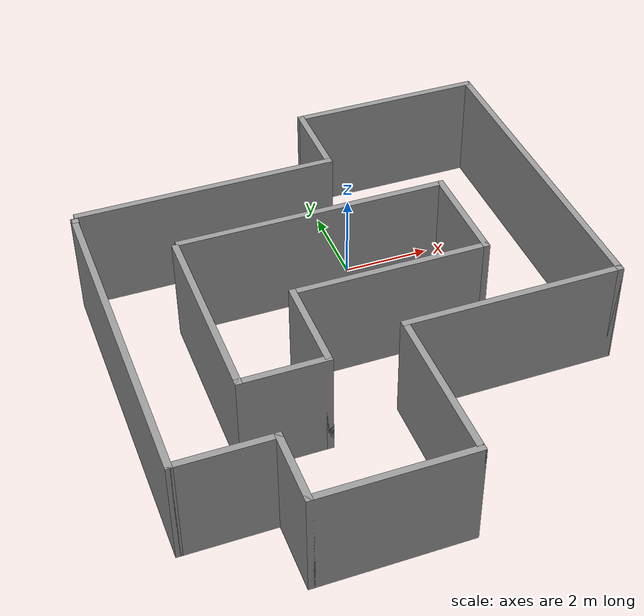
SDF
<?xml version='1.0'?>
<sdf version='1.6'>
  <model name='circleZ'>
    <pose frame=''>-0.878504 -2.71987 0 0 -0 0</pose>
    <link name='Wall_0'>
      <collision name='Wall_0_Collision'>
        <geometry>
          <box>
            <size>7.75 0.15 2.5</size>
          </box>
        </geometry>
        <pose frame=''>0 0 1.25 0 -0 0</pose>
      </collision>
      <visual name='Wall_0_Visual'>
        <pose frame=''>0 0 1.25 0 -0 0</pose>
        <geometry>
          <box>
            <size>7.75 0.15 2.5</size>
          </box>
        </geometry>
        <material>
          <script>
            <uri>file://media/materials/scripts/gazebo.material</uri>
            <name>Gazebo/Grey</name>
          </script>
          <ambient>1 1 1 1</ambient>
        </material>
      </visual>
      <pose frame=''>-5.15 -0.2 0 0 0 -1.5708</pose>
    </link>
    <link name='Wall_11'>
      <collision name='Wall_11_Collision'>
        <geometry>
          <box>
            <size>0.15 0.15 2.5</size>
          </box>
        </geometry>
        <pose frame=''>0 0 1.25 0 -0 0</pose>
      </collision>
      <visual name='Wall_11_Visual'>
        <pose frame=''>0 0 1.25 0 -0 0</pose>
        <geometry>
          <box>
            <size>0.15 0.15 2.5</size>
          </box>
        </geometry>
        <material>
          <script>
            <uri>file://media/materials/scripts/gazebo.material</uri>
            <name>Gazebo/Grey</name>
          </script>
          <ambient>1 1 1 1</ambient>
        </material>
      </visual>
      <pose frame=''>-5.13091 3.58818 0 0 -0 0</pose>
    </link>
    <link name='Wall_13'>
      <collision name='Wall_13_Collision'>
        <geometry>
          <box>
            <size>0.15 0.15 2.5</size>
          </box>
        </geometry>
        <pose frame=''>0 0 1.25 0 -0 0</pose>
      </collision>
      <visual name='Wall_13_Visual'>
        <pose frame=''>0 0 1.25 0 -0 0</pose>
        <geometry>
          <box>
            <size>0.15 0.15 2.5</size>
          </box>
        </geometry>
        <material>
          <script>
            <uri>file://media/materials/scripts/gazebo.material</uri>
            <name>Gazebo/Grey</name>
          </script>
          <ambient>1 1 1 1</ambient>
        </material>
      </visual>
      <pose frame=''>-5.13091 3.58818 0 0 -0 0</pose>
    </link>
    <link name='Wall_15'>
      <collision name='Wall_15_Collision'>
        <geometry>
          <box>
            <size>4.5 0.15 2.5</size>
          </box>
        </geometry>
        <pose frame=''>0 0 1.25 0 -0 0</pose>
      </collision>
      <visual name='Wall_15_Visual'>
        <pose frame=''>0 0 1.25 0 -0 0</pose>
        <geometry>
          <box>
            <size>4.5 0.15 2.5</size>
          </box>
        </geometry>
        <material>
          <script>
            <uri>file://media/materials/scripts/gazebo.material</uri>
            <name>Gazebo/Grey</name>
          </script>
          <ambient>1 1 1 1</ambient>
        </material>
      </visual>
      <pose frame=''>-3.33266 -0.231847 0 0 0 -1.5708</pose>
    </link>
    <link name='Wall_16'>
      <collision name='Wall_16_Collision'>
        <geometry>
          <box>
            <size>2 0.15 2.5</size>
          </box>
        </geometry>
        <pose frame=''>0 0 1.25 0 -0 0</pose>
      </collision>
      <visual name='Wall_16_Visual'>
        <pose frame=''>0 0 1.25 0 -0 0</pose>
        <geometry>
          <box>
            <size>2 0.15 2.5</size>
          </box>
        </geometry>
        <material>
          <script>
            <uri>file://media/materials/scripts/gazebo.material</uri>
            <name>Gazebo/Grey</name>
          </script>
          <ambient>1 1 1 1</ambient>
        </material>
      </visual>
      <pose frame=''>-2.40766 -2.40685 0 0 -0 0</pose>
    </link>
    <link name='Wall_18'>
      <collision name='Wall_18_Collision'>
        <geometry>
          <box>
            <size>2.25 0.15 2.5</size>
          </box>
        </geometry>
        <pose frame=''>0 0 1.25 0 -0 0</pose>
      </collision>
      <visual name='Wall_18_Visual'>
        <pose frame=''>0 0 1.25 0 -0 0</pose>
        <geometry>
          <box>
            <size>2.25 0.15 2.5</size>
          </box>
        </geometry>
        <material>
          <script>
            <uri>file://media/materials/scripts/gazebo.material</uri>
            <name>Gazebo/Grey</name>
          </script>
          <ambient>1 1 1 1</ambient>
        </material>
      </visual>
      <pose frame=''>-1.48266 -1.35685 0 0 -0 1.5708</pose>
    </link>
    <link name='Wall_19'>
      <collision name='Wall_19_Collision'>
        <geometry>
          <box>
            <size>4.5 0.15 2.5</size>
          </box>
        </geometry>
        <pose frame=''>0 0 1.25 0 -0 0</pose>
      </collision>
      <visual name='Wall_19_Visual'>
        <pose frame=''>0 0 1.25 0 -0 0</pose>
        <geometry>
          <box>
            <size>4.5 0.15 2.5</size>
          </box>
        </geometry>
        <material>
          <script>
            <uri>file://media/materials/scripts/gazebo.material</uri>
            <name>Gazebo/Grey</name>
          </script>
          <ambient>1 1 1 1</ambient>
        </material>
      </visual>
      <pose frame=''>0.692343 -0.306846 0 0 -0 0</pose>
    </link>
    <link name='Wall_2'>
      <collision name='Wall_2_Collision'>
        <geometry>
          <box>
            <size>2.25 0.15 2.5</size>
          </box>
        </geometry>
        <pose frame=''>0 0 1.25 0 -0 0</pose>
      </collision>
      <visual name='Wall_2_Visual'>
        <pose frame=''>0 0 1.25 0 -0 0</pose>
        <geometry>
          <box>
            <size>2.25 0.15 2.5</size>
          </box>
        </geometry>
        <material>
          <script>
            <uri>file://media/materials/scripts/gazebo.material</uri>
            <name>Gazebo/Grey</name>
          </script>
          <ambient>1 1 1 1</ambient>
        </material>
      </visual>
      <pose frame=''>-4.1 -4 0 0 -0 0</pose>
    </link>
    <link name='Wall_20'>
      <collision name='Wall_20_Collision'>
        <geometry>
          <box>
            <size>2.5 0.15 2.5</size>
          </box>
        </geometry>
        <pose frame=''>0 0 1.25 0 -0 0</pose>
      </collision>
      <visual name='Wall_20_Visual'>
        <pose frame=''>0 0 1.25 0 -0 0</pose>
        <geometry>
          <box>
            <size>2.5 0.15 2.5</size>
          </box>
        </geometry>
        <material>
          <script>
            <uri>file://media/materials/scripts/gazebo.material</uri>
            <name>Gazebo/Grey</name>
          </script>
          <ambient>1 1 1 1</ambient>
        </material>
      </visual>
      <pose frame=''>2.86734 0.868154 0 0 -0 1.5708</pose>
    </link>
    <link name='Wall_21'>
      <collision name='Wall_21_Collision'>
        <geometry>
          <box>
            <size>6.25 0.15 2.5</size>
          </box>
        </geometry>
        <pose frame=''>0 0 1.25 0 -0 0</pose>
      </collision>
      <visual name='Wall_21_Visual'>
        <pose frame=''>0 0 1.25 0 -0 0</pose>
        <geometry>
          <box>
            <size>6.25 0.15 2.5</size>
          </box>
        </geometry>
        <material>
          <script>
            <uri>file://media/materials/scripts/gazebo.material</uri>
            <name>Gazebo/Grey</name>
          </script>
          <ambient>1 1 1 1</ambient>
        </material>
      </visual>
      <pose frame=''>-0.182657 2.04315 0 0 -0 3.14159</pose>
    </link>
    <link name='Wall_28'>
      <collision name='Wall_28_Collision'>
        <geometry>
          <box>
            <size>2 0.15 2.5</size>
          </box>
        </geometry>
        <pose frame=''>0 0 1.25 0 -0 0</pose>
      </collision>
      <visual name='Wall_28_Visual'>
        <pose frame=''>0 0 1.25 0 -0 0</pose>
        <geometry>
          <box>
            <size>2 0.15 2.5</size>
          </box>
        </geometry>
        <material>
          <script>
            <uri>file://media/materials/scripts/gazebo.material</uri>
            <name>Gazebo/Grey</name>
          </script>
          <ambient>1 1 1 1</ambient>
        </material>
      </visual>
      <pose frame=''>0.8 4.675 0 0 0 -1.5708</pose>
    </link>
    <link name='Wall_29'>
      <collision name='Wall_29_Collision'>
        <geometry>
          <box>
            <size>6 0.15 2.5</size>
          </box>
        </geometry>
        <pose frame=''>0 0 1.25 0 -0 0</pose>
      </collision>
      <visual name='Wall_29_Visual'>
        <pose frame=''>0 0 1.25 0 -0 0</pose>
        <geometry>
          <box>
            <size>6 0.15 2.5</size>
          </box>
        </geometry>
        <material>
          <script>
            <uri>file://media/materials/scripts/gazebo.material</uri>
            <name>Gazebo/Grey</name>
          </script>
          <ambient>1 1 1 1</ambient>
        </material>
      </visual>
      <pose frame=''>-2.125 3.75 0 0 -0 3.14159</pose>
    </link>
    <link name='Wall_3'>
      <collision name='Wall_3_Collision'>
        <geometry>
          <box>
            <size>1.75 0.15 2.5</size>
          </box>
        </geometry>
        <pose frame=''>0 0 1.25 0 -0 0</pose>
      </collision>
      <visual name='Wall_3_Visual'>
        <pose frame=''>0 0 1.25 0 -0 0</pose>
        <geometry>
          <box>
            <size>1.75 0.15 2.5</size>
          </box>
        </geometry>
        <material>
          <script>
            <uri>file://media/materials/scripts/gazebo.material</uri>
            <name>Gazebo/Grey</name>
          </script>
          <ambient>1 1 1 1</ambient>
        </material>
      </visual>
      <pose frame=''>-3.05 -4.8 0 0 0 -1.5708</pose>
    </link>
    <link name='Wall_4'>
      <collision name='Wall_4_Collision'>
        <geometry>
          <box>
            <size>3.5 0.15 2.5</size>
          </box>
        </geometry>
        <pose frame=''>0 0 1.25 0 -0 0</pose>
      </collision>
      <visual name='Wall_4_Visual'>
        <pose frame=''>0 0 1.25 0 -0 0</pose>
        <geometry>
          <box>
            <size>3.5 0.15 2.5</size>
          </box>
        </geometry>
        <material>
          <script>
            <uri>file://media/materials/scripts/gazebo.material</uri>
            <name>Gazebo/Grey</name>
          </script>
          <ambient>1 1 1 1</ambient>
        </material>
      </visual>
      <pose frame=''>-1.375 -5.6 0 0 -0 0</pose>
    </link>
    <link name='Wall_5'>
      <collision name='Wall_5_Collision'>
        <geometry>
          <box>
            <size>3.75 0.15 2.5</size>
          </box>
        </geometry>
        <pose frame=''>0 0 1.25 0 -0 0</pose>
      </collision>
      <visual name='Wall_5_Visual'>
        <pose frame=''>0 0 1.25 0 -0 0</pose>
        <geometry>
          <box>
            <size>3.75 0.15 2.5</size>
          </box>
        </geometry>
        <material>
          <script>
            <uri>file://media/materials/scripts/gazebo.material</uri>
            <name>Gazebo/Grey</name>
          </script>
          <ambient>1 1 1 1</ambient>
        </material>
      </visual>
      <pose frame=''>0.3 -3.8 0 0 -0 1.5708</pose>
    </link>
    <link name='Wall_6'>
      <collision name='Wall_6_Collision'>
        <geometry>
          <box>
            <size>5 0.15 2.5</size>
          </box>
        </geometry>
        <pose frame=''>0 0 1.25 0 -0 0</pose>
      </collision>
      <visual name='Wall_6_Visual'>
        <pose frame=''>0 0 1.25 0 -0 0</pose>
        <geometry>
          <box>
            <size>5 0.15 2.5</size>
          </box>
        </geometry>
        <material>
          <script>
            <uri>file://media/materials/scripts/gazebo.material</uri>
            <name>Gazebo/Grey</name>
          </script>
          <ambient>1 1 1 1</ambient>
        </material>
      </visual>
      <pose frame=''>2.725 -2 0 0 -0 0</pose>
    </link>
    <link name='Wall_7'>
      <collision name='Wall_7_Collision'>
        <geometry>
          <box>
            <size>7.75 0.15 2.5</size>
          </box>
        </geometry>
        <pose frame=''>0 0 1.25 0 -0 0</pose>
      </collision>
      <visual name='Wall_7_Visual'>
        <pose frame=''>0 0 1.25 0 -0 0</pose>
        <geometry>
          <box>
            <size>7.75 0.15 2.5</size>
          </box>
        </geometry>
        <material>
          <script>
            <uri>file://media/materials/scripts/gazebo.material</uri>
            <name>Gazebo/Grey</name>
          </script>
          <ambient>1 1 1 1</ambient>
        </material>
      </visual>
      <pose frame=''>5.15 1.8 0 0 -0 1.5708</pose>
    </link>
    <link name='Wall_8'>
      <collision name='Wall_8_Collision'>
        <geometry>
          <box>
            <size>4.5 0.15 2.5</size>
          </box>
        </geometry>
        <pose frame=''>0 0 1.25 0 -0 0</pose>
      </collision>
      <visual name='Wall_8_Visual'>
        <pose frame=''>0 0 1.25 0 -0 0</pose>
        <geometry>
          <box>
            <size>4.5 0.15 2.5</size>
          </box>
        </geometry>
        <material>
          <script>
            <uri>file://media/materials/scripts/gazebo.material</uri>
            <name>Gazebo/Grey</name>
          </script>
          <ambient>1 1 1 1</ambient>
        </material>
      </visual>
      <pose frame=''>2.975 5.6 0 0 -0 3.14159</pose>
    </link>
    <static>1</static>
  </model>
</sdf>
